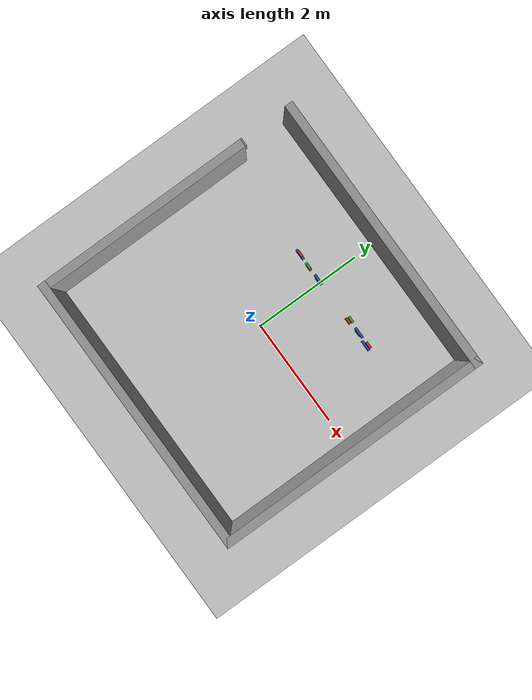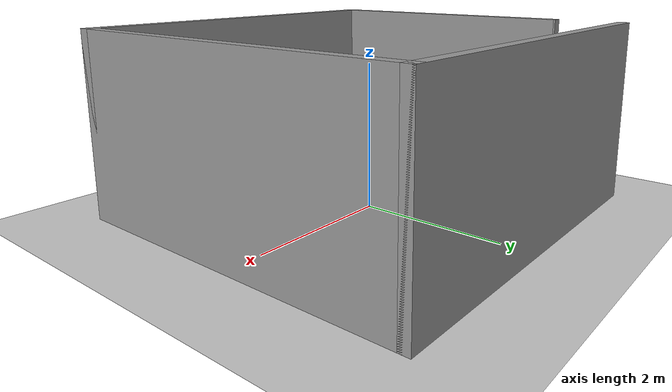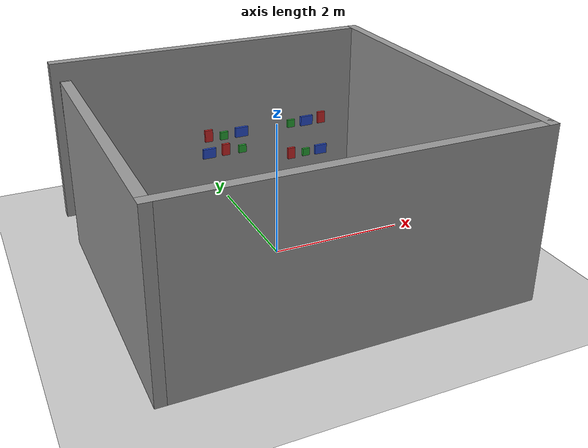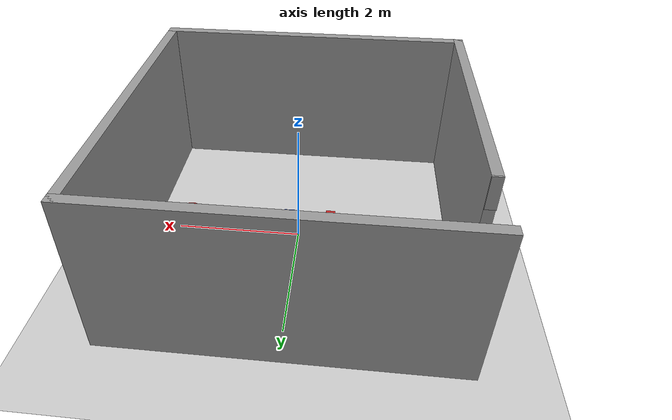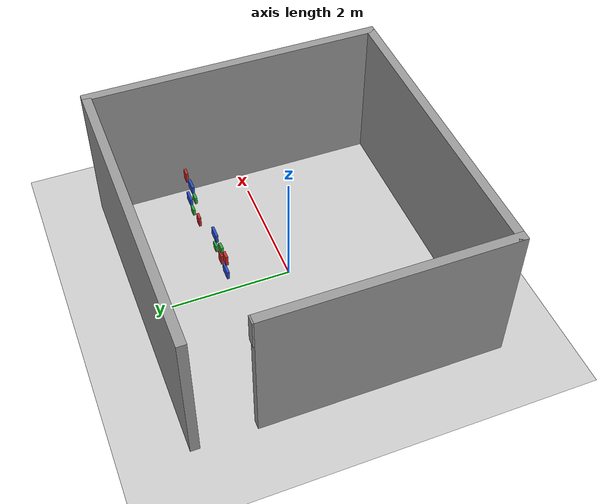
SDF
<sdf version="1.7">
 <world name="default">
  <light name="sun" type="directional">
   <pose>0 0 10 0 -0 0</pose>
   <diffuse>0.8 0.8 0.8 1</diffuse>
   <specular>0.2 0.2 0.2 1</specular>
   <attenuation>
    <range>1000</range>
    <constant>0.9</constant>
    <linear>0.01</linear>
    <quadratic>0.001</quadratic>
   </attenuation>
   <direction>-0.5 0.1 -0.9</direction>
   <spot><inner_angle>0</inner_angle><outer_angle>0</outer_angle><falloff>0</falloff></spot>
  </light>
  <model name="ground_plane">
   <static>1</static>
   <link name="link">
    <collision name="collision">
     <geometry><plane><normal>0 0 1</normal><size>100 100</size></plane></geometry>
     <surface>
      <contact><collide_bitmask>65535</collide_bitmask></contact>
      <friction><ode><mu>100</mu><mu2>50</mu2></ode></friction>
     </surface>
    </collision>
    <visual name="visual">
     <cast_shadows>0</cast_shadows>
     <geometry><plane><normal>0 0 1</normal><size>100 100</size></plane></geometry>
     <material>
      <script><uri>file://media/materials/scripts/gazebo.material</uri><name>Gazebo/Grey</name></script>
     </material>
    </visual>
   </link>
  </model>
  <gravity>0 0 -9.8</gravity>
  <magnetic_field>6e-06 2.3e-05 -4.2e-05</magnetic_field>
  <atmosphere type="adiabatic"/>
  <physics type="ode">
   <max_step_size>0.001</max_step_size>
   <real_time_factor>1</real_time_factor>
   <real_time_update_rate>1000</real_time_update_rate>
  </physics>
  <scene><ambient>0.4 0.4 0.4 1</ambient><background>0.7 0.7 0.7 1</background><shadows>1</shadows></scene>
  <spherical_coordinates>
   <surface_model>EARTH_WGS84</surface_model>
   <latitude_deg>0</latitude_deg>
   <longitude_deg>0</longitude_deg>
   <elevation>0</elevation>
   <heading_deg>0</heading_deg>
  </spherical_coordinates>
  <model name="box_red">
   <link name="link_1">
    <inertial>
     <mass>0.03</mass>
     <inertia><ixx>0.0005</ixx><ixy>0</ixy><ixz>0</ixz><iyy>0.0005</iyy><iyz>0</iyz><izz>0.0005</izz></inertia>
    </inertial>
    <visual name="visual">
     <geometry><box><size>0.04 0.12 0.18</size></box></geometry>
     <material>
      <lighting>1</lighting>
      <script><uri>file://media/materials/scripts/gazebo.material</uri><name>Gazebo/Red</name></script>
      <shader type="pixel"/>
     </material>
    </visual>
    <collision name="collision">
     <geometry><box><size>0.04 0.12 0.18</size></box></geometry>
     <surface>
      <friction>
       <ode><mu>1</mu><mu2>1</mu2><fdir1>0 0 0</fdir1><slip1>0</slip1><slip2>0</slip2></ode>
       <torsional>
        <coefficient>1</coefficient>
        <patch_radius>0</patch_radius>
        <surface_radius>0</surface_radius>
        <use_patch_radius>1</use_patch_radius>
        <ode><slip>0</slip></ode>
       </torsional>
      </friction>
      <bounce><restitution_coefficient>0</restitution_coefficient><threshold>1e+06</threshold></bounce>
      <contact>
       <collide_without_contact>0</collide_without_contact>
       <collide_without_contact_bitmask>1</collide_without_contact_bitmask>
       <collide_bitmask>1</collide_bitmask>
       <ode>
        <soft_cfm>0</soft_cfm>
        <soft_erp>0.2</soft_erp>
        <kp>1e+13</kp>
        <kd>1</kd>
        <max_vel>0.01</max_vel>
        <min_depth>0</min_depth>
       </ode>
       <bullet>
        <split_impulse>1</split_impulse>
        <split_impulse_penetration_threshold>-0.01</split_impulse_penetration_threshold>
        <soft_cfm>0</soft_cfm>
        <soft_erp>0.2</soft_erp>
        <kp>1e+13</kp>
        <kd>1</kd>
       </bullet>
      </contact>
     </surface>
    </collision>
   </link>
   <static>0</static>
   <pose>-0.563067 1.21615 1.47 0 -1.3e-05 -1.56313</pose>
  </model>
  <model name="box_green">
   <link name="link_1">
    <inertial>
     <mass>0.03</mass>
     <inertia><ixx>0.0005</ixx><ixy>0</ixy><ixz>0</ixz><iyy>0.0005</iyy><iyz>0</iyz><izz>0.0005</izz></inertia>
    </inertial>
    <visual name="visual">
     <geometry><box><size>0.04 0.12 0.12</size></box></geometry>
     <material>
      <lighting>1</lighting>
      <script><uri>file://media/materials/scripts/gazebo.material</uri><name>Gazebo/Green</name></script>
      <shader type="pixel"/>
     </material>
    </visual>
    <collision name="collision">
     <geometry><box><size>0.04 0.12 0.12</size></box></geometry>
     <surface>
      <friction>
       <ode><mu>1</mu><mu2>1</mu2><fdir1>0 0 0</fdir1><slip1>0</slip1><slip2>0</slip2></ode>
       <torsional>
        <coefficient>1</coefficient>
        <patch_radius>0</patch_radius>
        <surface_radius>0</surface_radius>
        <use_patch_radius>1</use_patch_radius>
        <ode><slip>0</slip></ode>
       </torsional>
      </friction>
      <bounce><restitution_coefficient>0</restitution_coefficient><threshold>1e+06</threshold></bounce>
      <contact>
       <collide_without_contact>0</collide_without_contact>
       <collide_without_contact_bitmask>1</collide_without_contact_bitmask>
       <collide_bitmask>1</collide_bitmask>
       <ode>
        <soft_cfm>0</soft_cfm>
        <soft_erp>0.2</soft_erp>
        <kp>1e+13</kp>
        <kd>1</kd>
        <max_vel>0.01</max_vel>
        <min_depth>0</min_depth>
       </ode>
       <bullet>
        <split_impulse>1</split_impulse>
        <split_impulse_penetration_threshold>-0.01</split_impulse_penetration_threshold>
        <soft_cfm>0</soft_cfm>
        <soft_erp>0.2</soft_erp>
        <kp>1e+13</kp>
        <kd>1</kd>
       </bullet>
      </contact>
     </surface>
    </collision>
   </link>
   <static>0</static>
   <pose>-0.036424 1.20984 1.17997 0 -8e-06 -1.57073</pose>
  </model>
  <model name="box_blue">
   <link name="link_1">
    <inertial>
     <mass>0.03</mass>
     <inertia><ixx>0.0005</ixx><ixy>0</ixy><ixz>0</ixz><iyy>0.0005</iyy><iyz>0</iyz><izz>0.0005</izz></inertia>
    </inertial>
    <visual name="visual">
     <geometry><box><size>0.04 0.2 0.15</size></box></geometry>
     <material>
      <lighting>1</lighting>
      <script><uri>file://media/materials/scripts/gazebo.material</uri><name>Gazebo/Blue</name></script>
      <shader type="pixel"/>
     </material>
    </visual>
    <collision name="collision">
     <geometry><box><size>0.04 0.2 0.15</size></box></geometry>
     <surface>
      <friction>
       <ode><mu>1</mu><mu2>1</mu2><fdir1>0 0 0</fdir1><slip1>0</slip1><slip2>0</slip2></ode>
       <torsional>
        <coefficient>1</coefficient>
        <patch_radius>0</patch_radius>
        <surface_radius>0</surface_radius>
        <use_patch_radius>1</use_patch_radius>
        <ode><slip>0</slip></ode>
       </torsional>
      </friction>
      <bounce><restitution_coefficient>0</restitution_coefficient><threshold>1e+06</threshold></bounce>
      <contact>
       <collide_without_contact>0</collide_without_contact>
       <collide_without_contact_bitmask>1</collide_without_contact_bitmask>
       <collide_bitmask>1</collide_bitmask>
       <ode>
        <soft_cfm>0</soft_cfm>
        <soft_erp>0.2</soft_erp>
        <kp>1e+13</kp>
        <kd>1</kd>
        <max_vel>0.01</max_vel>
        <min_depth>0</min_depth>
       </ode>
       <bullet>
        <split_impulse>1</split_impulse>
        <split_impulse_penetration_threshold>-0.01</split_impulse_penetration_threshold>
        <soft_cfm>0</soft_cfm>
        <soft_erp>0.2</soft_erp>
        <kp>1e+13</kp>
        <kd>1</kd>
       </bullet>
      </contact>
     </surface>
    </collision>
   </link>
   <static>0</static>
   <pose>-0.56087 1.22037 1.18723 0.00013 5.7e-05 -1.57124</pose>
  </model>
  <model name="box_blue_clone">
   <link name="link_1">
    <inertial>
     <mass>0.03</mass>
     <inertia><ixx>0.0005</ixx><ixy>0</ixy><ixz>0</ixz><iyy>0.0005</iyy><iyz>0</iyz><izz>0.0005</izz></inertia>
    </inertial>
    <visual name="visual">
     <geometry><box><size>0.04 0.2 0.15</size></box></geometry>
     <material>
      <lighting>1</lighting>
      <script><uri>file://media/materials/scripts/gazebo.material</uri><name>Gazebo/Blue</name></script>
      <shader type="pixel"/>
     </material>
    </visual>
    <collision name="collision">
     <geometry><box><size>0.04 0.2 0.15</size></box></geometry>
     <surface>
      <friction>
       <ode><mu>1</mu><mu2>1</mu2><fdir1>0 0 0</fdir1><slip1>0</slip1><slip2>0</slip2></ode>
       <torsional>
        <coefficient>1</coefficient>
        <patch_radius>0</patch_radius>
        <surface_radius>0</surface_radius>
        <use_patch_radius>1</use_patch_radius>
        <ode><slip>0</slip></ode>
       </torsional>
      </friction>
      <bounce><restitution_coefficient>0</restitution_coefficient><threshold>1e+06</threshold></bounce>
      <contact>
       <collide_without_contact>0</collide_without_contact>
       <collide_without_contact_bitmask>1</collide_without_contact_bitmask>
       <collide_bitmask>1</collide_bitmask>
       <ode>
        <soft_cfm>0</soft_cfm>
        <soft_erp>0.2</soft_erp>
        <kp>1e+13</kp>
        <kd>1</kd>
        <max_vel>0.01</max_vel>
        <min_depth>0</min_depth>
       </ode>
       <bullet>
        <split_impulse>1</split_impulse>
        <split_impulse_penetration_threshold>-0.01</split_impulse_penetration_threshold>
        <soft_cfm>0</soft_cfm>
        <soft_erp>0.2</soft_erp>
        <kp>1e+13</kp>
        <kd>1</kd>
       </bullet>
      </contact>
     </surface>
    </collision>
   </link>
   <static>0</static>
   <pose>-0.045293 1.21111 1.45497 0 -8e-06 -1.57069</pose>
  </model>
  <model name="box_red_clone">
   <link name="link_1">
    <inertial>
     <mass>0.03</mass>
     <inertia><ixx>0.0005</ixx><ixy>0</ixy><ixz>0</ixz><iyy>0.0005</iyy><iyz>0</iyz><izz>0.0005</izz></inertia>
    </inertial>
    <visual name="visual">
     <geometry><box><size>0.04 0.12 0.18</size></box></geometry>
     <material>
      <lighting>1</lighting>
      <script><uri>file://media/materials/scripts/gazebo.material</uri><name>Gazebo/Red</name></script>
      <shader type="pixel"/>
     </material>
    </visual>
    <collision name="collision">
     <geometry><box><size>0.04 0.12 0.18</size></box></geometry>
     <surface>
      <friction>
       <ode><mu>1</mu><mu2>1</mu2><fdir1>0 0 0</fdir1><slip1>0</slip1><slip2>0</slip2></ode>
       <torsional>
        <coefficient>1</coefficient>
        <patch_radius>0</patch_radius>
        <surface_radius>0</surface_radius>
        <use_patch_radius>1</use_patch_radius>
        <ode><slip>0</slip></ode>
       </torsional>
      </friction>
      <bounce><restitution_coefficient>0</restitution_coefficient><threshold>1e+06</threshold></bounce>
      <contact>
       <collide_without_contact>0</collide_without_contact>
       <collide_without_contact_bitmask>1</collide_without_contact_bitmask>
       <collide_bitmask>1</collide_bitmask>
       <ode>
        <soft_cfm>0</soft_cfm>
        <soft_erp>0.2</soft_erp>
        <kp>1e+13</kp>
        <kd>1</kd>
        <max_vel>0.01</max_vel>
        <min_depth>0</min_depth>
       </ode>
       <bullet>
        <split_impulse>1</split_impulse>
        <split_impulse_penetration_threshold>-0.01</split_impulse_penetration_threshold>
        <soft_cfm>0</soft_cfm>
        <soft_erp>0.2</soft_erp>
        <kp>1e+13</kp>
        <kd>1</kd>
       </bullet>
      </contact>
     </surface>
    </collision>
   </link>
   <static>0</static>
   <pose>-0.299704 1.21213 1.21 0 -1.3e-05 -1.57186</pose>
  </model>
  <model name="box_green_clone">
   <link name="link_1">
    <inertial>
     <mass>0.03</mass>
     <inertia><ixx>0.0005</ixx><ixy>0</ixy><ixz>0</ixz><iyy>0.0005</iyy><iyz>0</iyz><izz>0.0005</izz></inertia>
    </inertial>
    <visual name="visual">
     <geometry><box><size>0.04 0.12 0.12</size></box></geometry>
     <material>
      <lighting>1</lighting>
      <script><uri>file://media/materials/scripts/gazebo.material</uri><name>Gazebo/Green</name></script>
      <shader type="pixel"/>
     </material>
    </visual>
    <collision name="collision">
     <geometry><box><size>0.04 0.12 0.12</size></box></geometry>
     <surface>
      <friction>
       <ode><mu>1</mu><mu2>1</mu2><fdir1>0 0 0</fdir1><slip1>0</slip1><slip2>0</slip2></ode>
       <torsional>
        <coefficient>1</coefficient>
        <patch_radius>0</patch_radius>
        <surface_radius>0</surface_radius>
        <use_patch_radius>1</use_patch_radius>
        <ode><slip>0</slip></ode>
       </torsional>
      </friction>
      <bounce><restitution_coefficient>0</restitution_coefficient><threshold>1e+06</threshold></bounce>
      <contact>
       <collide_without_contact>0</collide_without_contact>
       <collide_without_contact_bitmask>1</collide_without_contact_bitmask>
       <collide_bitmask>1</collide_bitmask>
       <ode>
        <soft_cfm>0</soft_cfm>
        <soft_erp>0.2</soft_erp>
        <kp>1e+13</kp>
        <kd>1</kd>
        <max_vel>0.01</max_vel>
        <min_depth>0</min_depth>
       </ode>
       <bullet>
        <split_impulse>1</split_impulse>
        <split_impulse_penetration_threshold>-0.01</split_impulse_penetration_threshold>
        <soft_cfm>0</soft_cfm>
        <soft_erp>0.2</soft_erp>
        <kp>1e+13</kp>
        <kd>1</kd>
       </bullet>
      </contact>
     </surface>
    </collision>
   </link>
   <static>0</static>
   <pose>-0.325927 1.20947 1.43997 0 -8e-06 -1.54777</pose>
  </model>
  <model name="Arena">
   <pose>0 0 0 0 0 -1.5707</pose>
   <link name="Wall_10">
    <collision name="Wall_10_Collision">
     <geometry><box><size>5 0.15 2.5</size></box></geometry>
     <pose>0 0 1.25 0 -0 0</pose>
    </collision>
    <visual name="Wall_10_Visual">
     <pose>0 0 1.25 0 -0 0</pose>
     <geometry><box><size>5 0.15 2.5</size></box></geometry>
     <material>
      <script><uri>file://media/materials/scripts/gazebo.material</uri><name>Gazebo/Grey</name></script>
      <ambient>1 1 1 1</ambient>
     </material>
     <meta><layer>0</layer></meta>
    </visual>
    <pose>0 2.5 0 0 -0 0</pose>
   </link>
   <link name="Wall_11">
    <collision name="Wall_11_Collision">
     <geometry><box><size>5.15 0.15 2.5</size></box></geometry>
     <pose>0 0 1.25 0 -0 0</pose>
    </collision>
    <visual name="Wall_11_Visual">
     <pose>0 0 1.25 0 -0 0</pose>
     <geometry><box><size>5.15 0.15 2.5</size></box></geometry>
     <material>
      <script><uri>file://media/materials/scripts/gazebo.material</uri><name>Gazebo/Grey</name></script>
      <ambient>1 1 1 1</ambient>
     </material>
     <meta><layer>0</layer></meta>
    </visual>
    <pose>2.425 0 0 0 -0 -1.5708</pose>
   </link>
   <link name="Wall_14">
    <pose>0.5 -2.5 0 0 -0 3.14159</pose>
    <visual name="Wall_14_Visual_0">
     <pose>-0.0125 0 1.25 0 -0 0</pose>
     <geometry><box><size>3.975 0.15 2.5</size></box></geometry>
     <material>
      <script><uri>file://media/materials/scripts/gazebo.material</uri><name>Gazebo/Grey</name></script>
      <ambient>1 1 1 1</ambient>
     </material>
     <meta><layer>0</layer></meta>
    </visual>
    <collision name="Wall_14_Collision_0">
     <geometry><box><size>3.975 0.15 2.5</size></box></geometry>
     <pose>-0.0125 0 1.25 0 -0 0</pose>
    </collision>
    <visual name="Wall_14_Visual_1">
     <pose>1.9875 0 2.25 0 -0 0</pose>
     <geometry><box><size>0.025 0.15 0.5</size></box></geometry>
     <material>
      <script><uri>file://media/materials/scripts/gazebo.material</uri><name>Gazebo/Grey</name></script>
      <ambient>1 1 1 1</ambient>
     </material>
     <meta><layer>0</layer></meta>
    </visual>
    <collision name="Wall_14_Collision_1">
     <geometry><box><size>0.025 0.15 0.5</size></box></geometry>
     <pose>1.9875 0 2.25 0 -0 0</pose>
    </collision>
   </link>
   <link name="Wall_8">
    <collision name="Wall_8_Collision">
     <geometry><box><size>5.15 0.15 2.5</size></box></geometry>
     <pose>0 0 1.25 0 -0 0</pose>
    </collision>
    <visual name="Wall_8_Visual">
     <pose>0 0 1.25 0 -0 0</pose>
     <geometry><box><size>5.15 0.15 2.5</size></box></geometry>
     <material>
      <script><uri>file://media/materials/scripts/gazebo.material</uri><name>Gazebo/Grey</name></script>
      <ambient>1 1 1 1</ambient>
     </material>
     <meta><layer>0</layer></meta>
    </visual>
    <pose>-2.425 0 0 0 -0 1.5708</pose>
   </link>
   <static>1</static>
  </model>
  <model name="box_blue_clone_0">
   <link name="link_1">
    <inertial>
     <mass>0.03</mass>
     <inertia><ixx>0.0005</ixx><ixy>0</ixy><ixz>0</ixz><iyy>0.0005</iyy><iyz>0</iyz><izz>0.0005</izz></inertia>
    </inertial>
    <visual name="visual">
     <geometry><box><size>0.04 0.2 0.15</size></box></geometry>
     <material>
      <lighting>1</lighting>
      <script><uri>file://media/materials/scripts/gazebo.material</uri><name>Gazebo/Blue</name></script>
      <shader type="pixel"/>
     </material>
    </visual>
    <collision name="collision">
     <geometry><box><size>0.04 0.2 0.15</size></box></geometry>
     <surface>
      <friction>
       <ode><mu>1</mu><mu2>1</mu2><fdir1>0 0 0</fdir1><slip1>0</slip1><slip2>0</slip2></ode>
       <torsional>
        <coefficient>1</coefficient>
        <patch_radius>0</patch_radius>
        <surface_radius>0</surface_radius>
        <use_patch_radius>1</use_patch_radius>
        <ode><slip>0</slip></ode>
       </torsional>
      </friction>
      <bounce><restitution_coefficient>0</restitution_coefficient><threshold>1e+06</threshold></bounce>
      <contact>
       <collide_without_contact>0</collide_without_contact>
       <collide_without_contact_bitmask>1</collide_without_contact_bitmask>
       <collide_bitmask>1</collide_bitmask>
       <ode>
        <soft_cfm>0</soft_cfm>
        <soft_erp>0.2</soft_erp>
        <kp>1e+13</kp>
        <kd>1</kd>
        <max_vel>0.01</max_vel>
        <min_depth>0</min_depth>
       </ode>
       <bullet>
        <split_impulse>1</split_impulse>
        <split_impulse_penetration_threshold>-0.01</split_impulse_penetration_threshold>
        <soft_cfm>0</soft_cfm>
        <soft_erp>0.2</soft_erp>
        <kp>1e+13</kp>
        <kd>1</kd>
       </bullet>
      </contact>
     </surface>
    </collision>
   </link>
   <static>0</static>
   <pose>1.30276 1.22243 0.93499 3.1e-05 -0 -1.57212</pose>
  </model>
  <model name="box_green_clone_0">
   <link name="link_1">
    <inertial>
     <mass>0.03</mass>
     <inertia><ixx>0.0005</ixx><ixy>0</ixy><ixz>0</ixz><iyy>0.0005</iyy><iyz>0</iyz><izz>0.0005</izz></inertia>
    </inertial>
    <visual name="visual">
     <geometry><box><size>0.04 0.12 0.12</size></box></geometry>
     <material>
      <lighting>1</lighting>
      <script><uri>file://media/materials/scripts/gazebo.material</uri><name>Gazebo/Green</name></script>
      <shader type="pixel"/>
     </material>
    </visual>
    <collision name="collision">
     <geometry><box><size>0.04 0.12 0.12</size></box></geometry>
     <surface>
      <friction>
       <ode><mu>1</mu><mu2>1</mu2><fdir1>0 0 0</fdir1><slip1>0</slip1><slip2>0</slip2></ode>
       <torsional>
        <coefficient>1</coefficient>
        <patch_radius>0</patch_radius>
        <surface_radius>0</surface_radius>
        <use_patch_radius>1</use_patch_radius>
        <ode><slip>0</slip></ode>
       </torsional>
      </friction>
      <bounce><restitution_coefficient>0</restitution_coefficient><threshold>1e+06</threshold></bounce>
      <contact>
       <collide_without_contact>0</collide_without_contact>
       <collide_without_contact_bitmask>1</collide_without_contact_bitmask>
       <collide_bitmask>1</collide_bitmask>
       <ode>
        <soft_cfm>0</soft_cfm>
        <soft_erp>0.2</soft_erp>
        <kp>1e+13</kp>
        <kd>1</kd>
        <max_vel>0.01</max_vel>
        <min_depth>0</min_depth>
       </ode>
       <bullet>
        <split_impulse>1</split_impulse>
        <split_impulse_penetration_threshold>-0.01</split_impulse_penetration_threshold>
        <soft_cfm>0</soft_cfm>
        <soft_erp>0.2</soft_erp>
        <kp>1e+13</kp>
        <kd>1</kd>
       </bullet>
      </contact>
     </surface>
    </collision>
   </link>
   <static>0</static>
   <pose>0.797821 1.2586 1.43998 0 -1.3e-05 -1.56963</pose>
  </model>
  <model name="box_red_clone_0">
   <link name="link_1">
    <inertial>
     <mass>0.03</mass>
     <inertia><ixx>0.0005</ixx><ixy>0</ixy><ixz>0</ixz><iyy>0.0005</iyy><iyz>0</iyz><izz>0.0005</izz></inertia>
    </inertial>
    <visual name="visual">
     <geometry><box><size>0.04 0.12 0.18</size></box></geometry>
     <material>
      <lighting>1</lighting>
      <script><uri>file://media/materials/scripts/gazebo.material</uri><name>Gazebo/Red</name></script>
      <shader type="pixel"/>
     </material>
    </visual>
    <collision name="collision">
     <geometry><box><size>0.04 0.12 0.18</size></box></geometry>
     <surface>
      <friction>
       <ode><mu>1</mu><mu2>1</mu2><fdir1>0 0 0</fdir1><slip1>0</slip1><slip2>0</slip2></ode>
       <torsional>
        <coefficient>1</coefficient>
        <patch_radius>0</patch_radius>
        <surface_radius>0</surface_radius>
        <use_patch_radius>1</use_patch_radius>
        <ode><slip>0</slip></ode>
       </torsional>
      </friction>
      <bounce><restitution_coefficient>0</restitution_coefficient><threshold>1e+06</threshold></bounce>
      <contact>
       <collide_without_contact>0</collide_without_contact>
       <collide_without_contact_bitmask>1</collide_without_contact_bitmask>
       <collide_bitmask>1</collide_bitmask>
       <ode>
        <soft_cfm>0</soft_cfm>
        <soft_erp>0.2</soft_erp>
        <kp>1e+13</kp>
        <kd>1</kd>
        <max_vel>0.01</max_vel>
        <min_depth>0</min_depth>
       </ode>
       <bullet>
        <split_impulse>1</split_impulse>
        <split_impulse_penetration_threshold>-0.01</split_impulse_penetration_threshold>
        <soft_cfm>0</soft_cfm>
        <soft_erp>0.2</soft_erp>
        <kp>1e+13</kp>
        <kd>1</kd>
       </bullet>
      </contact>
     </surface>
    </collision>
   </link>
   <static>0</static>
   <pose>0.795468 1.22797 0.949981 0 -1.3e-05 -1.57075</pose>
  </model>
  <model name="box_red_clone_1">
   <link name="link_1">
    <inertial>
     <mass>0.03</mass>
     <inertia><ixx>0.0005</ixx><ixy>0</ixy><ixz>0</ixz><iyy>0.0005</iyy><iyz>0</iyz><izz>0.0005</izz></inertia>
    </inertial>
    <visual name="visual">
     <geometry><box><size>0.04 0.12 0.18</size></box></geometry>
     <material>
      <lighting>1</lighting>
      <script><uri>file://media/materials/scripts/gazebo.material</uri><name>Gazebo/Red</name></script>
      <shader type="pixel"/>
     </material>
    </visual>
    <collision name="collision">
     <geometry><box><size>0.04 0.12 0.18</size></box></geometry>
     <surface>
      <friction>
       <ode><mu>1</mu><mu2>1</mu2><fdir1>0 0 0</fdir1><slip1>0</slip1><slip2>0</slip2></ode>
       <torsional>
        <coefficient>1</coefficient>
        <patch_radius>0</patch_radius>
        <surface_radius>0</surface_radius>
        <use_patch_radius>1</use_patch_radius>
        <ode><slip>0</slip></ode>
       </torsional>
      </friction>
      <bounce><restitution_coefficient>0</restitution_coefficient><threshold>1e+06</threshold></bounce>
      <contact>
       <collide_without_contact>0</collide_without_contact>
       <collide_without_contact_bitmask>1</collide_without_contact_bitmask>
       <collide_bitmask>1</collide_bitmask>
       <ode>
        <soft_cfm>0</soft_cfm>
        <soft_erp>0.2</soft_erp>
        <kp>1e+13</kp>
        <kd>1</kd>
        <max_vel>0.01</max_vel>
        <min_depth>0</min_depth>
       </ode>
       <bullet>
        <split_impulse>1</split_impulse>
        <split_impulse_penetration_threshold>-0.01</split_impulse_penetration_threshold>
        <soft_cfm>0</soft_cfm>
        <soft_erp>0.2</soft_erp>
        <kp>1e+13</kp>
        <kd>1</kd>
       </bullet>
      </contact>
     </surface>
    </collision>
   </link>
   <static>0</static>
   <pose>1.30604 1.24211 1.46999 -0 -4.8e-05 -1.56863</pose>
  </model>
  <model name="box_green_clone_0_clone">
   <link name="link_1">
    <inertial>
     <mass>0.03</mass>
     <inertia><ixx>0.0005</ixx><ixy>0</ixy><ixz>0</ixz><iyy>0.0005</iyy><iyz>0</iyz><izz>0.0005</izz></inertia>
    </inertial>
    <visual name="visual">
     <geometry><box><size>0.04 0.12 0.12</size></box></geometry>
     <material>
      <lighting>1</lighting>
      <script><uri>file://media/materials/scripts/gazebo.material</uri><name>Gazebo/Green</name></script>
      <shader type="pixel"/>
     </material>
    </visual>
    <collision name="collision">
     <geometry><box><size>0.04 0.12 0.12</size></box></geometry>
     <surface>
      <friction>
       <ode><mu>1</mu><mu2>1</mu2><fdir1>0 0 0</fdir1><slip1>0</slip1><slip2>0</slip2></ode>
       <torsional>
        <coefficient>1</coefficient>
        <patch_radius>0</patch_radius>
        <surface_radius>0</surface_radius>
        <use_patch_radius>1</use_patch_radius>
        <ode><slip>0</slip></ode>
       </torsional>
      </friction>
      <bounce><restitution_coefficient>0</restitution_coefficient><threshold>1e+06</threshold></bounce>
      <contact>
       <collide_without_contact>0</collide_without_contact>
       <collide_without_contact_bitmask>1</collide_without_contact_bitmask>
       <collide_bitmask>1</collide_bitmask>
       <ode>
        <soft_cfm>0</soft_cfm>
        <soft_erp>0.2</soft_erp>
        <kp>1e+13</kp>
        <kd>1</kd>
        <max_vel>0.01</max_vel>
        <min_depth>0</min_depth>
       </ode>
       <bullet>
        <split_impulse>1</split_impulse>
        <split_impulse_penetration_threshold>-0.01</split_impulse_penetration_threshold>
        <soft_cfm>0</soft_cfm>
        <soft_erp>0.2</soft_erp>
        <kp>1e+13</kp>
        <kd>1</kd>
       </bullet>
      </contact>
     </surface>
    </collision>
   </link>
   <static>0</static>
   <pose>1.05784 1.24451 0.91992 1.6e-05 1e-06 -1.57034</pose>
  </model>
  <model name="box_blue_clone_0_clone">
   <link name="link_1">
    <inertial>
     <mass>0.03</mass>
     <inertia><ixx>0.0005</ixx><ixy>0</ixy><ixz>0</ixz><iyy>0.0005</iyy><iyz>0</iyz><izz>0.0005</izz></inertia>
    </inertial>
    <visual name="visual">
     <geometry><box><size>0.04 0.2 0.15</size></box></geometry>
     <material>
      <lighting>1</lighting>
      <script><uri>file://media/materials/scripts/gazebo.material</uri><name>Gazebo/Blue</name></script>
      <shader type="pixel"/>
     </material>
    </visual>
    <collision name="collision">
     <geometry><box><size>0.04 0.2 0.15</size></box></geometry>
     <surface>
      <friction>
       <ode><mu>1</mu><mu2>1</mu2><fdir1>0 0 0</fdir1><slip1>0</slip1><slip2>0</slip2></ode>
       <torsional>
        <coefficient>1</coefficient>
        <patch_radius>0</patch_radius>
        <surface_radius>0</surface_radius>
        <use_patch_radius>1</use_patch_radius>
        <ode><slip>0</slip></ode>
       </torsional>
      </friction>
      <bounce><restitution_coefficient>0</restitution_coefficient><threshold>1e+06</threshold></bounce>
      <contact>
       <collide_without_contact>0</collide_without_contact>
       <collide_without_contact_bitmask>1</collide_without_contact_bitmask>
       <collide_bitmask>1</collide_bitmask>
       <ode>
        <soft_cfm>0</soft_cfm>
        <soft_erp>0.2</soft_erp>
        <kp>1e+13</kp>
        <kd>1</kd>
        <max_vel>0.01</max_vel>
        <min_depth>0</min_depth>
       </ode>
       <bullet>
        <split_impulse>1</split_impulse>
        <split_impulse_penetration_threshold>-0.01</split_impulse_penetration_threshold>
        <soft_cfm>0</soft_cfm>
        <soft_erp>0.2</soft_erp>
        <kp>1e+13</kp>
        <kd>1</kd>
       </bullet>
      </contact>
     </surface>
    </collision>
   </link>
   <static>0</static>
   <pose>1.05085 1.2367 1.45492 1.6e-05 1e-06 -1.56378</pose>
  </model>
 </world>
</sdf>
